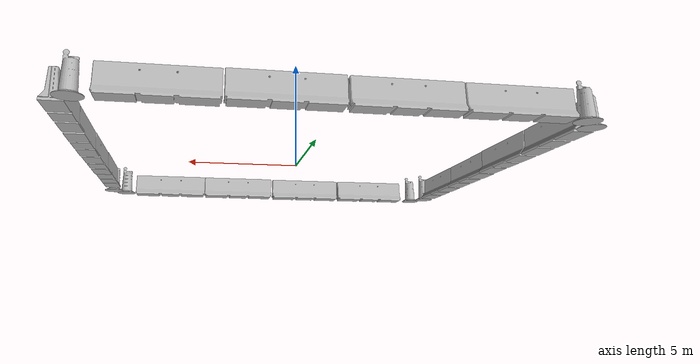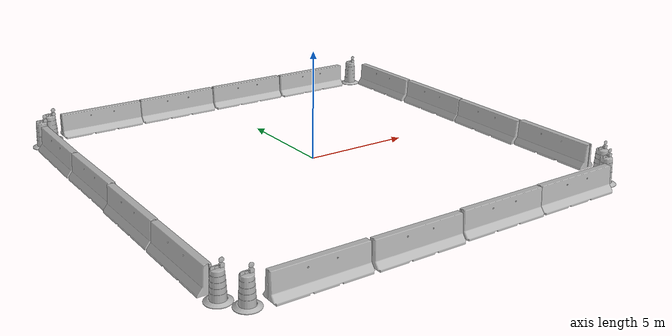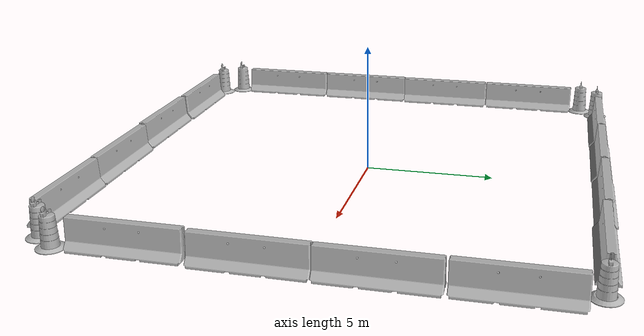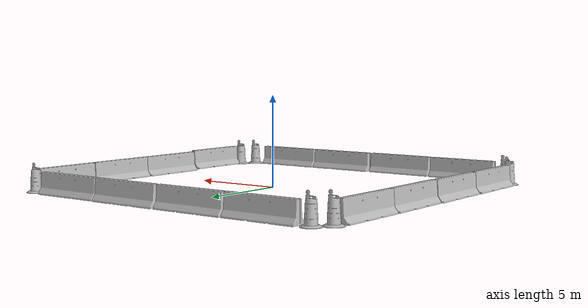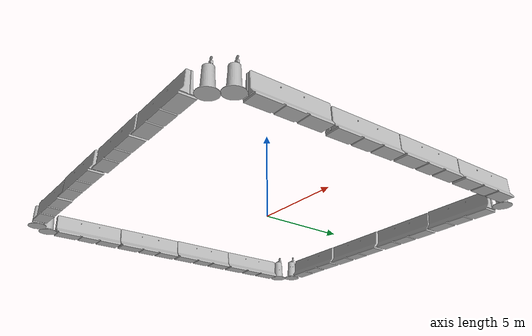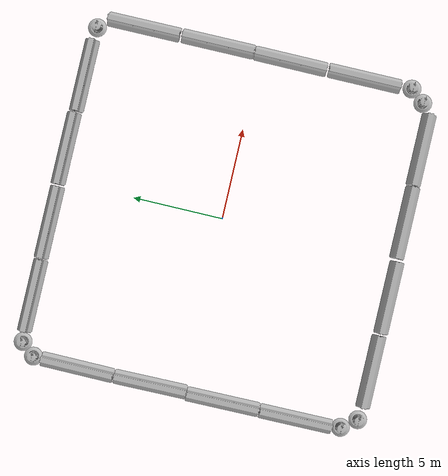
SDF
<?xml version='1.0'?>
<sdf version='1.7'>
  <model name='my_world.world'>
    <model name='Construction Barrel'>
      <link name='link'>
        <inertial>
          <pose>0 0 0.4 0 -0 0</pose>
          <mass>500</mass>
          <inertia>
            <ixx>51.2096</ixx>
            <iyy>51.2096</iyy>
            <izz>25</izz>
            <ixy>0</ixy>
            <ixz>0</ixz>
            <iyz>0</iyz>
          </inertia>
        </inertial>
        <collision name='collision'>
          <geometry>
            <mesh>
              <uri>model://construction_barrel/meshes/construction_barrel.dae</uri>
            </mesh>
          </geometry>
        </collision>
        <visual name='visual'>
          <geometry>
            <mesh>
              <uri>model://construction_barrel/meshes/construction_barrel.dae</uri>
            </mesh>
          </geometry>
        </visual>
      </link>
      <pose>-9.05347 -9.75039 -0.002812 0 -0 0</pose>
    </model>
    <model name='Construction Barrel_0'>
      <link name='link'>
        <inertial>
          <pose>0 0 0.4 0 -0 0</pose>
          <mass>500</mass>
          <inertia>
            <ixx>51.2096</ixx>
            <iyy>51.2096</iyy>
            <izz>25</izz>
            <ixy>0</ixy>
            <ixz>0</ixz>
            <iyz>0</iyz>
          </inertia>
        </inertial>
        <collision name='collision'>
          <geometry>
            <mesh>
              <uri>model://construction_barrel/meshes/construction_barrel.dae</uri>
            </mesh>
          </geometry>
        </collision>
        <visual name='visual'>
          <geometry>
            <mesh>
              <uri>model://construction_barrel/meshes/construction_barrel.dae</uri>
            </mesh>
          </geometry>
        </visual>
      </link>
      <pose>-9.67474 -8.92016 -0.002812 0 -0 0</pose>
    </model>
    <model name='Construction Barrel_1'>
      <link name='link'>
        <inertial>
          <pose>0 0 0.4 0 -0 0</pose>
          <mass>500</mass>
          <inertia>
            <ixx>51.2096</ixx>
            <iyy>51.2096</iyy>
            <izz>25</izz>
            <ixy>0</ixy>
            <ixz>0</ixz>
            <iyz>0</iyz>
          </inertia>
        </inertial>
        <collision name='collision'>
          <geometry>
            <mesh>
              <uri>model://construction_barrel/meshes/construction_barrel.dae</uri>
            </mesh>
          </geometry>
        </collision>
        <visual name='visual'>
          <geometry>
            <mesh>
              <uri>model://construction_barrel/meshes/construction_barrel.dae</uri>
            </mesh>
          </geometry>
        </visual>
      </link>
      <pose>8.67849 -9.2879 -0.002812 0 -0 0</pose>
    </model>
    <model name='Construction Barrel_2'>
      <link name='link'>
        <inertial>
          <pose>0 0 0.4 0 -0 0</pose>
          <mass>500</mass>
          <inertia>
            <ixx>51.2096</ixx>
            <iyy>51.2096</iyy>
            <izz>25</izz>
            <ixy>0</ixy>
            <ixz>0</ixz>
            <iyz>0</iyz>
          </inertia>
        </inertial>
        <collision name='collision'>
          <geometry>
            <mesh>
              <uri>model://construction_barrel/meshes/construction_barrel.dae</uri>
            </mesh>
          </geometry>
        </collision>
        <visual name='visual'>
          <geometry>
            <mesh>
              <uri>model://construction_barrel/meshes/construction_barrel.dae</uri>
            </mesh>
          </geometry>
        </visual>
      </link>
      <pose>9.31507 -8.53154 -0.002812 0 -0 0</pose>
    </model>
    <model name='Construction Barrel_3'>
      <link name='link'>
        <inertial>
          <pose>0 0 0.4 0 -0 0</pose>
          <mass>500</mass>
          <inertia>
            <ixx>51.2096</ixx>
            <iyy>51.2096</iyy>
            <izz>25</izz>
            <ixy>0</ixy>
            <ixz>0</ixz>
            <iyz>0</iyz>
          </inertia>
        </inertial>
        <collision name='collision'>
          <geometry>
            <mesh>
              <uri>model://construction_barrel/meshes/construction_barrel.dae</uri>
            </mesh>
          </geometry>
        </collision>
        <visual name='visual'>
          <geometry>
            <mesh>
              <uri>model://construction_barrel/meshes/construction_barrel.dae</uri>
            </mesh>
          </geometry>
        </visual>
      </link>
      <pose>8.65864 9.0764 -0.002812 0 -0 0</pose>
    </model>
    <model name='Construction Barrel_4'>
      <link name='link'>
        <inertial>
          <pose>0 0 0.4 0 -0 0</pose>
          <mass>500</mass>
          <inertia>
            <ixx>51.2096</ixx>
            <iyy>51.2096</iyy>
            <izz>25</izz>
            <ixy>0</ixy>
            <ixz>0</ixz>
            <iyz>0</iyz>
          </inertia>
        </inertial>
        <collision name='collision'>
          <geometry>
            <mesh>
              <uri>model://construction_barrel/meshes/construction_barrel.dae</uri>
            </mesh>
          </geometry>
        </collision>
        <visual name='visual'>
          <geometry>
            <mesh>
              <uri>model://construction_barrel/meshes/construction_barrel.dae</uri>
            </mesh>
          </geometry>
        </visual>
      </link>
      <pose>-9.70849 8.37655 -0.002812 0 -0 0</pose>
    </model>
    <model name='Construction Barrel_5'>
      <link name='link'>
        <inertial>
          <pose>0 0 0.4 0 -0 0</pose>
          <mass>500</mass>
          <inertia>
            <ixx>51.2096</ixx>
            <iyy>51.2096</iyy>
            <izz>25</izz>
            <ixy>0</ixy>
            <ixz>0</ixz>
            <iyz>0</iyz>
          </inertia>
        </inertial>
        <collision name='collision'>
          <geometry>
            <mesh>
              <uri>model://construction_barrel/meshes/construction_barrel.dae</uri>
            </mesh>
          </geometry>
        </collision>
        <visual name='visual'>
          <geometry>
            <mesh>
              <uri>model://construction_barrel/meshes/construction_barrel.dae</uri>
            </mesh>
          </geometry>
        </visual>
      </link>
      <pose>-9.05911 9.11472 -0.002812 0 -0 0</pose>
    </model>
    <model name='jersey_barrier'>
      <static>1</static>
      <link name='link'>
        <visual name='visual'>
          <geometry>
            <mesh>
              <uri>model://jersey_barrier/meshes/jersey_barrier.dae</uri>
            </mesh>
          </geometry>
        </visual>
        <collision name='upright'>
          <pose>0 0 0.5715 0 -0 0</pose>
          <geometry>
            <box>
              <size>4.06542 0.3063 1.143</size>
            </box>
          </geometry>
        </collision>
        <collision name='base'>
          <pose>0 0 0.032258 0 -0 0</pose>
          <geometry>
            <box>
              <size>4.06542 0.8107 0.064516</size>
            </box>
          </geometry>
        </collision>
        <collision name='base2'>
          <pose>0 0 0.1 0 -0 0</pose>
          <geometry>
            <box>
              <size>4.06542 0.65 0.1</size>
            </box>
          </geometry>
        </collision>
        <collision name='base3'>
          <pose>0 0 0.2 0 -0 0</pose>
          <geometry>
            <box>
              <size>4.06542 0.5 0.1</size>
            </box>
          </geometry>
        </collision>
        <collision name='left-angle'>
          <pose>0 -0.224 0.2401 0.9 -0 0</pose>
          <geometry>
            <box>
              <size>4.06542 0.5 0.064516</size>
            </box>
          </geometry>
        </collision>
        <collision name='right-angle'>
          <pose>0 0.224 0.2401 -0.9 0 0</pose>
          <geometry>
            <box>
              <size>4.06542 0.5 0.064516</size>
            </box>
          </geometry>
        </collision>
      </link>
      <pose>6.14243 -9.78056 -0.002812 0 -0 0</pose>
    </model>
    <model name='jersey_barrier_0'>
      <static>1</static>
      <link name='link'>
        <visual name='visual'>
          <geometry>
            <mesh>
              <uri>model://jersey_barrier/meshes/jersey_barrier.dae</uri>
            </mesh>
          </geometry>
        </visual>
        <collision name='upright'>
          <pose>0 0 0.5715 0 -0 0</pose>
          <geometry>
            <box>
              <size>4.06542 0.3063 1.143</size>
            </box>
          </geometry>
        </collision>
        <collision name='base'>
          <pose>0 0 0.032258 0 -0 0</pose>
          <geometry>
            <box>
              <size>4.06542 0.8107 0.064516</size>
            </box>
          </geometry>
        </collision>
        <collision name='base2'>
          <pose>0 0 0.1 0 -0 0</pose>
          <geometry>
            <box>
              <size>4.06542 0.65 0.1</size>
            </box>
          </geometry>
        </collision>
        <collision name='base3'>
          <pose>0 0 0.2 0 -0 0</pose>
          <geometry>
            <box>
              <size>4.06542 0.5 0.1</size>
            </box>
          </geometry>
        </collision>
        <collision name='left-angle'>
          <pose>0 -0.224 0.2401 0.9 -0 0</pose>
          <geometry>
            <box>
              <size>4.06542 0.5 0.064516</size>
            </box>
          </geometry>
        </collision>
        <collision name='right-angle'>
          <pose>0 0.224 0.2401 -0.9 0 0</pose>
          <geometry>
            <box>
              <size>4.06542 0.5 0.064516</size>
            </box>
          </geometry>
        </collision>
      </link>
      <pose>2.05272 -9.80878 -0.002812 0 -0 0</pose>
    </model>
    <model name='jersey_barrier_1'>
      <static>1</static>
      <link name='link'>
        <visual name='visual'>
          <geometry>
            <mesh>
              <uri>model://jersey_barrier/meshes/jersey_barrier.dae</uri>
            </mesh>
          </geometry>
        </visual>
        <collision name='upright'>
          <pose>0 0 0.5715 0 -0 0</pose>
          <geometry>
            <box>
              <size>4.06542 0.3063 1.143</size>
            </box>
          </geometry>
        </collision>
        <collision name='base'>
          <pose>0 0 0.032258 0 -0 0</pose>
          <geometry>
            <box>
              <size>4.06542 0.8107 0.064516</size>
            </box>
          </geometry>
        </collision>
        <collision name='base2'>
          <pose>0 0 0.1 0 -0 0</pose>
          <geometry>
            <box>
              <size>4.06542 0.65 0.1</size>
            </box>
          </geometry>
        </collision>
        <collision name='base3'>
          <pose>0 0 0.2 0 -0 0</pose>
          <geometry>
            <box>
              <size>4.06542 0.5 0.1</size>
            </box>
          </geometry>
        </collision>
        <collision name='left-angle'>
          <pose>0 -0.224 0.2401 0.9 -0 0</pose>
          <geometry>
            <box>
              <size>4.06542 0.5 0.064516</size>
            </box>
          </geometry>
        </collision>
        <collision name='right-angle'>
          <pose>0 0.224 0.2401 -0.9 0 0</pose>
          <geometry>
            <box>
              <size>4.06542 0.5 0.064516</size>
            </box>
          </geometry>
        </collision>
      </link>
      <pose>-2.14753 -9.89237 -0.002812 0 -0 0</pose>
    </model>
    <model name='jersey_barrier_10'>
      <static>1</static>
      <link name='link'>
        <visual name='visual'>
          <geometry>
            <mesh>
              <uri>model://jersey_barrier/meshes/jersey_barrier.dae</uri>
            </mesh>
          </geometry>
        </visual>
        <collision name='upright'>
          <pose>0 0 0.5715 0 -0 0</pose>
          <geometry>
            <box>
              <size>4.06542 0.3063 1.143</size>
            </box>
          </geometry>
        </collision>
        <collision name='base'>
          <pose>0 0 0.032258 0 -0 0</pose>
          <geometry>
            <box>
              <size>4.06542 0.8107 0.064516</size>
            </box>
          </geometry>
        </collision>
        <collision name='base2'>
          <pose>0 0 0.1 0 -0 0</pose>
          <geometry>
            <box>
              <size>4.06542 0.65 0.1</size>
            </box>
          </geometry>
        </collision>
        <collision name='base3'>
          <pose>0 0 0.2 0 -0 0</pose>
          <geometry>
            <box>
              <size>4.06542 0.5 0.1</size>
            </box>
          </geometry>
        </collision>
        <collision name='left-angle'>
          <pose>0 -0.224 0.2401 0.9 -0 0</pose>
          <geometry>
            <box>
              <size>4.06542 0.5 0.064516</size>
            </box>
          </geometry>
        </collision>
        <collision name='right-angle'>
          <pose>0 0.224 0.2401 -0.9 0 0</pose>
          <geometry>
            <box>
              <size>4.06542 0.5 0.064516</size>
            </box>
          </geometry>
        </collision>
      </link>
      <pose>9.2843 6.56418 -0.002812 0 0 -1.57054</pose>
    </model>
    <model name='jersey_barrier_11'>
      <static>1</static>
      <link name='link'>
        <visual name='visual'>
          <geometry>
            <mesh>
              <uri>model://jersey_barrier/meshes/jersey_barrier.dae</uri>
            </mesh>
          </geometry>
        </visual>
        <collision name='upright'>
          <pose>0 0 0.5715 0 -0 0</pose>
          <geometry>
            <box>
              <size>4.06542 0.3063 1.143</size>
            </box>
          </geometry>
        </collision>
        <collision name='base'>
          <pose>0 0 0.032258 0 -0 0</pose>
          <geometry>
            <box>
              <size>4.06542 0.8107 0.064516</size>
            </box>
          </geometry>
        </collision>
        <collision name='base2'>
          <pose>0 0 0.1 0 -0 0</pose>
          <geometry>
            <box>
              <size>4.06542 0.65 0.1</size>
            </box>
          </geometry>
        </collision>
        <collision name='base3'>
          <pose>0 0 0.2 0 -0 0</pose>
          <geometry>
            <box>
              <size>4.06542 0.5 0.1</size>
            </box>
          </geometry>
        </collision>
        <collision name='left-angle'>
          <pose>0 -0.224 0.2401 0.9 -0 0</pose>
          <geometry>
            <box>
              <size>4.06542 0.5 0.064516</size>
            </box>
          </geometry>
        </collision>
        <collision name='right-angle'>
          <pose>0 0.224 0.2401 -0.9 0 0</pose>
          <geometry>
            <box>
              <size>4.06542 0.5 0.064516</size>
            </box>
          </geometry>
        </collision>
      </link>
      <pose>-9.76985 -6.40049 -0.002812 0 -0 1.57596</pose>
    </model>
    <model name='jersey_barrier_12'>
      <static>1</static>
      <link name='link'>
        <visual name='visual'>
          <geometry>
            <mesh>
              <uri>model://jersey_barrier/meshes/jersey_barrier.dae</uri>
            </mesh>
          </geometry>
        </visual>
        <collision name='upright'>
          <pose>0 0 0.5715 0 -0 0</pose>
          <geometry>
            <box>
              <size>4.06542 0.3063 1.143</size>
            </box>
          </geometry>
        </collision>
        <collision name='base'>
          <pose>0 0 0.032258 0 -0 0</pose>
          <geometry>
            <box>
              <size>4.06542 0.8107 0.064516</size>
            </box>
          </geometry>
        </collision>
        <collision name='base2'>
          <pose>0 0 0.1 0 -0 0</pose>
          <geometry>
            <box>
              <size>4.06542 0.65 0.1</size>
            </box>
          </geometry>
        </collision>
        <collision name='base3'>
          <pose>0 0 0.2 0 -0 0</pose>
          <geometry>
            <box>
              <size>4.06542 0.5 0.1</size>
            </box>
          </geometry>
        </collision>
        <collision name='left-angle'>
          <pose>0 -0.224 0.2401 0.9 -0 0</pose>
          <geometry>
            <box>
              <size>4.06542 0.5 0.064516</size>
            </box>
          </geometry>
        </collision>
        <collision name='right-angle'>
          <pose>0 0.224 0.2401 -0.9 0 0</pose>
          <geometry>
            <box>
              <size>4.06542 0.5 0.064516</size>
            </box>
          </geometry>
        </collision>
      </link>
      <pose>-9.77491 -2.29203 -0.002812 0 -0 1.57771</pose>
    </model>
    <model name='jersey_barrier_13'>
      <static>1</static>
      <link name='link'>
        <visual name='visual'>
          <geometry>
            <mesh>
              <uri>model://jersey_barrier/meshes/jersey_barrier.dae</uri>
            </mesh>
          </geometry>
        </visual>
        <collision name='upright'>
          <pose>0 0 0.5715 0 -0 0</pose>
          <geometry>
            <box>
              <size>4.06542 0.3063 1.143</size>
            </box>
          </geometry>
        </collision>
        <collision name='base'>
          <pose>0 0 0.032258 0 -0 0</pose>
          <geometry>
            <box>
              <size>4.06542 0.8107 0.064516</size>
            </box>
          </geometry>
        </collision>
        <collision name='base2'>
          <pose>0 0 0.1 0 -0 0</pose>
          <geometry>
            <box>
              <size>4.06542 0.65 0.1</size>
            </box>
          </geometry>
        </collision>
        <collision name='base3'>
          <pose>0 0 0.2 0 -0 0</pose>
          <geometry>
            <box>
              <size>4.06542 0.5 0.1</size>
            </box>
          </geometry>
        </collision>
        <collision name='left-angle'>
          <pose>0 -0.224 0.2401 0.9 -0 0</pose>
          <geometry>
            <box>
              <size>4.06542 0.5 0.064516</size>
            </box>
          </geometry>
        </collision>
        <collision name='right-angle'>
          <pose>0 0.224 0.2401 -0.9 0 0</pose>
          <geometry>
            <box>
              <size>4.06542 0.5 0.064516</size>
            </box>
          </geometry>
        </collision>
      </link>
      <pose>-9.73953 1.78 -0.002812 0 -0 1.58105</pose>
    </model>
    <model name='jersey_barrier_14'>
      <static>1</static>
      <link name='link'>
        <visual name='visual'>
          <geometry>
            <mesh>
              <uri>model://jersey_barrier/meshes/jersey_barrier.dae</uri>
            </mesh>
          </geometry>
        </visual>
        <collision name='upright'>
          <pose>0 0 0.5715 0 -0 0</pose>
          <geometry>
            <box>
              <size>4.06542 0.3063 1.143</size>
            </box>
          </geometry>
        </collision>
        <collision name='base'>
          <pose>0 0 0.032258 0 -0 0</pose>
          <geometry>
            <box>
              <size>4.06542 0.8107 0.064516</size>
            </box>
          </geometry>
        </collision>
        <collision name='base2'>
          <pose>0 0 0.1 0 -0 0</pose>
          <geometry>
            <box>
              <size>4.06542 0.65 0.1</size>
            </box>
          </geometry>
        </collision>
        <collision name='base3'>
          <pose>0 0 0.2 0 -0 0</pose>
          <geometry>
            <box>
              <size>4.06542 0.5 0.1</size>
            </box>
          </geometry>
        </collision>
        <collision name='left-angle'>
          <pose>0 -0.224 0.2401 0.9 -0 0</pose>
          <geometry>
            <box>
              <size>4.06542 0.5 0.064516</size>
            </box>
          </geometry>
        </collision>
        <collision name='right-angle'>
          <pose>0 0.224 0.2401 -0.9 0 0</pose>
          <geometry>
            <box>
              <size>4.06542 0.5 0.064516</size>
            </box>
          </geometry>
        </collision>
      </link>
      <pose>-9.74625 5.88606 -0.002812 0 -0 1.56352</pose>
    </model>
    <model name='jersey_barrier_2'>
      <static>1</static>
      <link name='link'>
        <visual name='visual'>
          <geometry>
            <mesh>
              <uri>model://jersey_barrier/meshes/jersey_barrier.dae</uri>
            </mesh>
          </geometry>
        </visual>
        <collision name='upright'>
          <pose>0 0 0.5715 0 -0 0</pose>
          <geometry>
            <box>
              <size>4.06542 0.3063 1.143</size>
            </box>
          </geometry>
        </collision>
        <collision name='base'>
          <pose>0 0 0.032258 0 -0 0</pose>
          <geometry>
            <box>
              <size>4.06542 0.8107 0.064516</size>
            </box>
          </geometry>
        </collision>
        <collision name='base2'>
          <pose>0 0 0.1 0 -0 0</pose>
          <geometry>
            <box>
              <size>4.06542 0.65 0.1</size>
            </box>
          </geometry>
        </collision>
        <collision name='base3'>
          <pose>0 0 0.2 0 -0 0</pose>
          <geometry>
            <box>
              <size>4.06542 0.5 0.1</size>
            </box>
          </geometry>
        </collision>
        <collision name='left-angle'>
          <pose>0 -0.224 0.2401 0.9 -0 0</pose>
          <geometry>
            <box>
              <size>4.06542 0.5 0.064516</size>
            </box>
          </geometry>
        </collision>
        <collision name='right-angle'>
          <pose>0 0.224 0.2401 -0.9 0 0</pose>
          <geometry>
            <box>
              <size>4.06542 0.5 0.064516</size>
            </box>
          </geometry>
        </collision>
      </link>
      <pose>-6.31498 -9.84902 -0.002812 0 -0 0</pose>
    </model>
    <model name='jersey_barrier_3'>
      <static>1</static>
      <link name='link'>
        <visual name='visual'>
          <geometry>
            <mesh>
              <uri>model://jersey_barrier/meshes/jersey_barrier.dae</uri>
            </mesh>
          </geometry>
        </visual>
        <collision name='upright'>
          <pose>0 0 0.5715 0 -0 0</pose>
          <geometry>
            <box>
              <size>4.06542 0.3063 1.143</size>
            </box>
          </geometry>
        </collision>
        <collision name='base'>
          <pose>0 0 0.032258 0 -0 0</pose>
          <geometry>
            <box>
              <size>4.06542 0.8107 0.064516</size>
            </box>
          </geometry>
        </collision>
        <collision name='base2'>
          <pose>0 0 0.1 0 -0 0</pose>
          <geometry>
            <box>
              <size>4.06542 0.65 0.1</size>
            </box>
          </geometry>
        </collision>
        <collision name='base3'>
          <pose>0 0 0.2 0 -0 0</pose>
          <geometry>
            <box>
              <size>4.06542 0.5 0.1</size>
            </box>
          </geometry>
        </collision>
        <collision name='left-angle'>
          <pose>0 -0.224 0.2401 0.9 -0 0</pose>
          <geometry>
            <box>
              <size>4.06542 0.5 0.064516</size>
            </box>
          </geometry>
        </collision>
        <collision name='right-angle'>
          <pose>0 0.224 0.2401 -0.9 0 0</pose>
          <geometry>
            <box>
              <size>4.06542 0.5 0.064516</size>
            </box>
          </geometry>
        </collision>
      </link>
      <pose>5.92016 9.16623 -0.002812 0 -0 0</pose>
    </model>
    <model name='jersey_barrier_4'>
      <static>1</static>
      <link name='link'>
        <visual name='visual'>
          <geometry>
            <mesh>
              <uri>model://jersey_barrier/meshes/jersey_barrier.dae</uri>
            </mesh>
          </geometry>
        </visual>
        <collision name='upright'>
          <pose>0 0 0.5715 0 -0 0</pose>
          <geometry>
            <box>
              <size>4.06542 0.3063 1.143</size>
            </box>
          </geometry>
        </collision>
        <collision name='base'>
          <pose>0 0 0.032258 0 -0 0</pose>
          <geometry>
            <box>
              <size>4.06542 0.8107 0.064516</size>
            </box>
          </geometry>
        </collision>
        <collision name='base2'>
          <pose>0 0 0.1 0 -0 0</pose>
          <geometry>
            <box>
              <size>4.06542 0.65 0.1</size>
            </box>
          </geometry>
        </collision>
        <collision name='base3'>
          <pose>0 0 0.2 0 -0 0</pose>
          <geometry>
            <box>
              <size>4.06542 0.5 0.1</size>
            </box>
          </geometry>
        </collision>
        <collision name='left-angle'>
          <pose>0 -0.224 0.2401 0.9 -0 0</pose>
          <geometry>
            <box>
              <size>4.06542 0.5 0.064516</size>
            </box>
          </geometry>
        </collision>
        <collision name='right-angle'>
          <pose>0 0.224 0.2401 -0.9 0 0</pose>
          <geometry>
            <box>
              <size>4.06542 0.5 0.064516</size>
            </box>
          </geometry>
        </collision>
      </link>
      <pose>1.7935 9.22962 -0.002812 0 -0 0</pose>
    </model>
    <model name='jersey_barrier_5'>
      <static>1</static>
      <link name='link'>
        <visual name='visual'>
          <geometry>
            <mesh>
              <uri>model://jersey_barrier/meshes/jersey_barrier.dae</uri>
            </mesh>
          </geometry>
        </visual>
        <collision name='upright'>
          <pose>0 0 0.5715 0 -0 0</pose>
          <geometry>
            <box>
              <size>4.06542 0.3063 1.143</size>
            </box>
          </geometry>
        </collision>
        <collision name='base'>
          <pose>0 0 0.032258 0 -0 0</pose>
          <geometry>
            <box>
              <size>4.06542 0.8107 0.064516</size>
            </box>
          </geometry>
        </collision>
        <collision name='base2'>
          <pose>0 0 0.1 0 -0 0</pose>
          <geometry>
            <box>
              <size>4.06542 0.65 0.1</size>
            </box>
          </geometry>
        </collision>
        <collision name='base3'>
          <pose>0 0 0.2 0 -0 0</pose>
          <geometry>
            <box>
              <size>4.06542 0.5 0.1</size>
            </box>
          </geometry>
        </collision>
        <collision name='left-angle'>
          <pose>0 -0.224 0.2401 0.9 -0 0</pose>
          <geometry>
            <box>
              <size>4.06542 0.5 0.064516</size>
            </box>
          </geometry>
        </collision>
        <collision name='right-angle'>
          <pose>0 0.224 0.2401 -0.9 0 0</pose>
          <geometry>
            <box>
              <size>4.06542 0.5 0.064516</size>
            </box>
          </geometry>
        </collision>
      </link>
      <pose>-2.36291 9.2038 -0.002812 0 -0 0</pose>
    </model>
    <model name='jersey_barrier_6'>
      <static>1</static>
      <link name='link'>
        <visual name='visual'>
          <geometry>
            <mesh>
              <uri>model://jersey_barrier/meshes/jersey_barrier.dae</uri>
            </mesh>
          </geometry>
        </visual>
        <collision name='upright'>
          <pose>0 0 0.5715 0 -0 0</pose>
          <geometry>
            <box>
              <size>4.06542 0.3063 1.143</size>
            </box>
          </geometry>
        </collision>
        <collision name='base'>
          <pose>0 0 0.032258 0 -0 0</pose>
          <geometry>
            <box>
              <size>4.06542 0.8107 0.064516</size>
            </box>
          </geometry>
        </collision>
        <collision name='base2'>
          <pose>0 0 0.1 0 -0 0</pose>
          <geometry>
            <box>
              <size>4.06542 0.65 0.1</size>
            </box>
          </geometry>
        </collision>
        <collision name='base3'>
          <pose>0 0 0.2 0 -0 0</pose>
          <geometry>
            <box>
              <size>4.06542 0.5 0.1</size>
            </box>
          </geometry>
        </collision>
        <collision name='left-angle'>
          <pose>0 -0.224 0.2401 0.9 -0 0</pose>
          <geometry>
            <box>
              <size>4.06542 0.5 0.064516</size>
            </box>
          </geometry>
        </collision>
        <collision name='right-angle'>
          <pose>0 0.224 0.2401 -0.9 0 0</pose>
          <geometry>
            <box>
              <size>4.06542 0.5 0.064516</size>
            </box>
          </geometry>
        </collision>
      </link>
      <pose>-6.47635 9.17646 -0.002812 0 -0 0</pose>
    </model>
    <model name='jersey_barrier_7'>
      <static>1</static>
      <link name='link'>
        <visual name='visual'>
          <geometry>
            <mesh>
              <uri>model://jersey_barrier/meshes/jersey_barrier.dae</uri>
            </mesh>
          </geometry>
        </visual>
        <collision name='upright'>
          <pose>0 0 0.5715 0 -0 0</pose>
          <geometry>
            <box>
              <size>4.06542 0.3063 1.143</size>
            </box>
          </geometry>
        </collision>
        <collision name='base'>
          <pose>0 0 0.032258 0 -0 0</pose>
          <geometry>
            <box>
              <size>4.06542 0.8107 0.064516</size>
            </box>
          </geometry>
        </collision>
        <collision name='base2'>
          <pose>0 0 0.1 0 -0 0</pose>
          <geometry>
            <box>
              <size>4.06542 0.65 0.1</size>
            </box>
          </geometry>
        </collision>
        <collision name='base3'>
          <pose>0 0 0.2 0 -0 0</pose>
          <geometry>
            <box>
              <size>4.06542 0.5 0.1</size>
            </box>
          </geometry>
        </collision>
        <collision name='left-angle'>
          <pose>0 -0.224 0.2401 0.9 -0 0</pose>
          <geometry>
            <box>
              <size>4.06542 0.5 0.064516</size>
            </box>
          </geometry>
        </collision>
        <collision name='right-angle'>
          <pose>0 0.224 0.2401 -0.9 0 0</pose>
          <geometry>
            <box>
              <size>4.06542 0.5 0.064516</size>
            </box>
          </geometry>
        </collision>
      </link>
      <pose>9.2763 -5.85081 0.061869 0 0 -1.57242</pose>
    </model>
    <model name='jersey_barrier_8'>
      <static>1</static>
      <link name='link'>
        <visual name='visual'>
          <geometry>
            <mesh>
              <uri>model://jersey_barrier/meshes/jersey_barrier.dae</uri>
            </mesh>
          </geometry>
        </visual>
        <collision name='upright'>
          <pose>0 0 0.5715 0 -0 0</pose>
          <geometry>
            <box>
              <size>4.06542 0.3063 1.143</size>
            </box>
          </geometry>
        </collision>
        <collision name='base'>
          <pose>0 0 0.032258 0 -0 0</pose>
          <geometry>
            <box>
              <size>4.06542 0.8107 0.064516</size>
            </box>
          </geometry>
        </collision>
        <collision name='base2'>
          <pose>0 0 0.1 0 -0 0</pose>
          <geometry>
            <box>
              <size>4.06542 0.65 0.1</size>
            </box>
          </geometry>
        </collision>
        <collision name='base3'>
          <pose>0 0 0.2 0 -0 0</pose>
          <geometry>
            <box>
              <size>4.06542 0.5 0.1</size>
            </box>
          </geometry>
        </collision>
        <collision name='left-angle'>
          <pose>0 -0.224 0.2401 0.9 -0 0</pose>
          <geometry>
            <box>
              <size>4.06542 0.5 0.064516</size>
            </box>
          </geometry>
        </collision>
        <collision name='right-angle'>
          <pose>0 0.224 0.2401 -0.9 0 0</pose>
          <geometry>
            <box>
              <size>4.06542 0.5 0.064516</size>
            </box>
          </geometry>
        </collision>
      </link>
      <pose>9.27576 -1.68859 -0.002812 0 0 -1.57519</pose>
    </model>
    <model name='jersey_barrier_9'>
      <static>1</static>
      <link name='link'>
        <visual name='visual'>
          <geometry>
            <mesh>
              <uri>model://jersey_barrier/meshes/jersey_barrier.dae</uri>
            </mesh>
          </geometry>
        </visual>
        <collision name='upright'>
          <pose>0 0 0.5715 0 -0 0</pose>
          <geometry>
            <box>
              <size>4.06542 0.3063 1.143</size>
            </box>
          </geometry>
        </collision>
        <collision name='base'>
          <pose>0 0 0.032258 0 -0 0</pose>
          <geometry>
            <box>
              <size>4.06542 0.8107 0.064516</size>
            </box>
          </geometry>
        </collision>
        <collision name='base2'>
          <pose>0 0 0.1 0 -0 0</pose>
          <geometry>
            <box>
              <size>4.06542 0.65 0.1</size>
            </box>
          </geometry>
        </collision>
        <collision name='base3'>
          <pose>0 0 0.2 0 -0 0</pose>
          <geometry>
            <box>
              <size>4.06542 0.5 0.1</size>
            </box>
          </geometry>
        </collision>
        <collision name='left-angle'>
          <pose>0 -0.224 0.2401 0.9 -0 0</pose>
          <geometry>
            <box>
              <size>4.06542 0.5 0.064516</size>
            </box>
          </geometry>
        </collision>
        <collision name='right-angle'>
          <pose>0 0.224 0.2401 -0.9 0 0</pose>
          <geometry>
            <box>
              <size>4.06542 0.5 0.064516</size>
            </box>
          </geometry>
        </collision>
      </link>
      <pose>9.30173 2.40166 -0.002812 0 0 -1.57056</pose>
    </model>
    <static>0</static>
    <allow_auto_disable>1</allow_auto_disable>
  </model>
</sdf>
